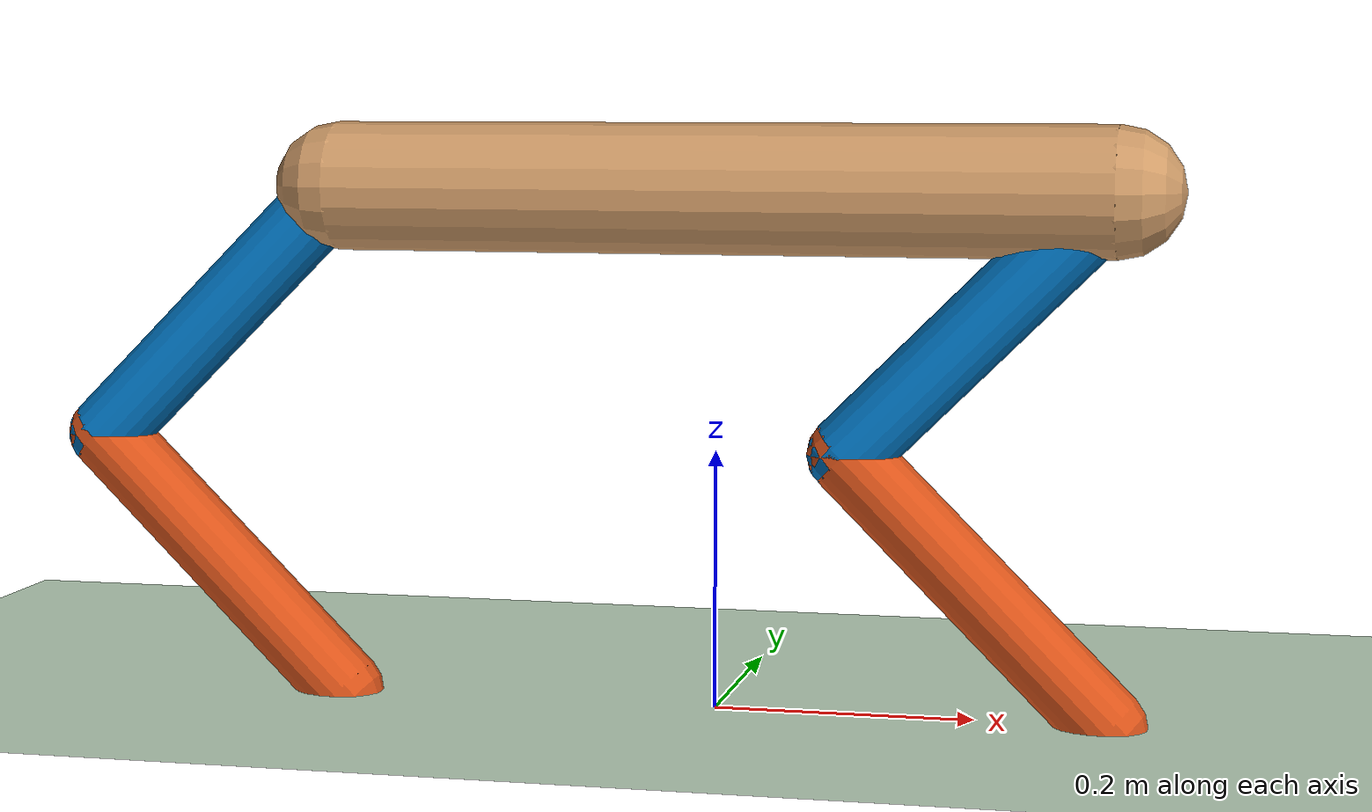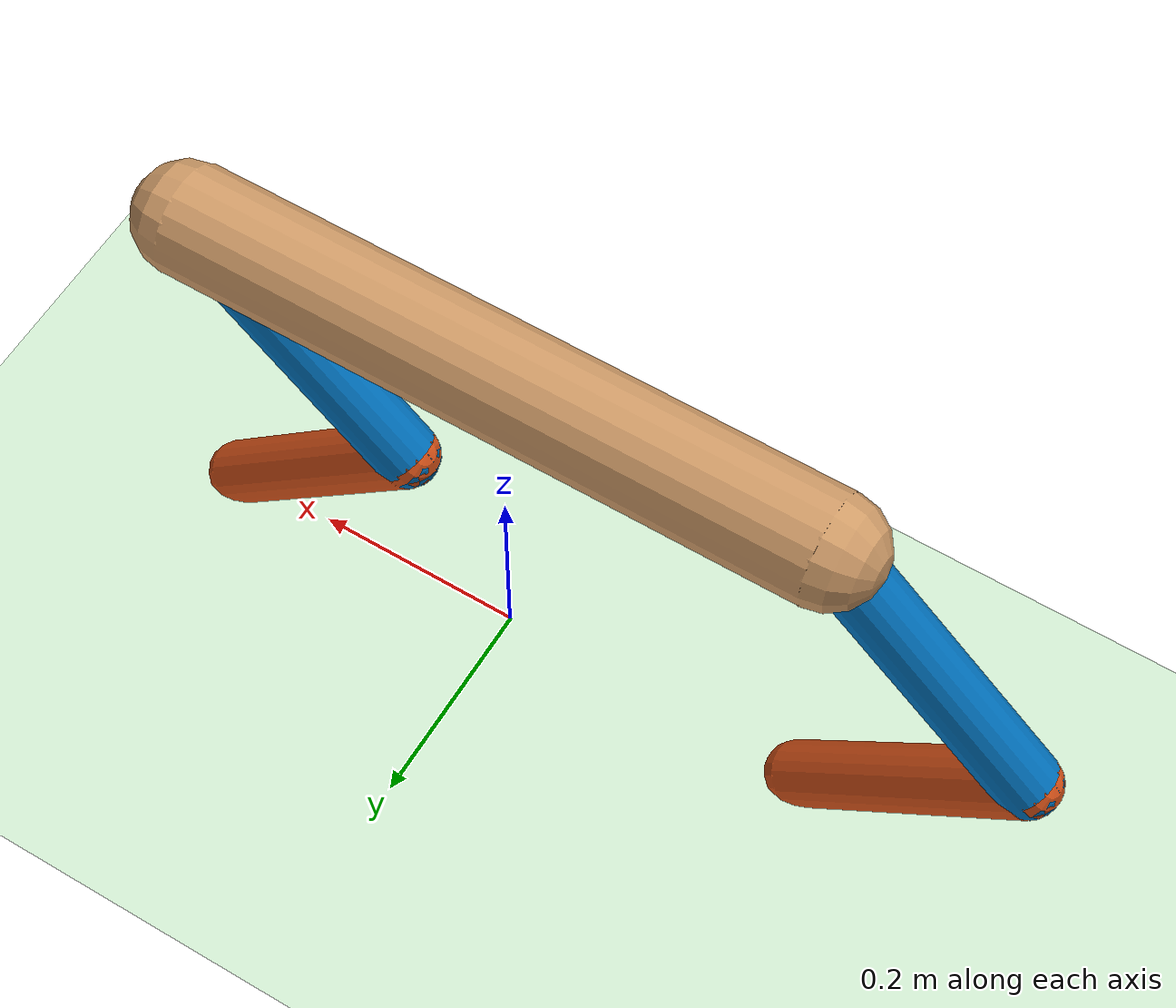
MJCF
<mujoco model="mit_mini_cheetah">
    <compiler angle="degree" coordinate="local" inertiafromgeom="true" settotalmass="14"/>
    <default>
        <joint armature=".1" damping="0.0" limited="true" solimplimit="0 .8 .03" solreflimit=".02 1" stiffness="0"/>
        <geom conaffinity="0" condim="3" contype="1" friction=".9 .1 .1" rgba="0.8 0.6 .4 1" solimp="0.0 0.8 0.01"
              solref="0.02 1"/>
        <motor ctrllimited="true" ctrlrange="-1 1"/>
    </default>
    <size nstack="300000" nuser_geom="1"/>
    <option gravity="0 0 -9.81" timestep="0.002"/>
    <asset>
        <texture builtin="gradient" height="100" rgb1="1 1 1" rgb2="0 0 0" type="skybox" width="100"/>
        <texture builtin="flat" height="1278" mark="cross" markrgb="1 1 1" name="texgeom" random="0.01"
                 rgb1="0.8 0.6 0.4" rgb2="0.8 0.6 0.4" type="cube" width="127"/>
        <texture builtin="checker" height="100" name="texplane" rgb1="0 0 0" rgb2="0.8 0.8 0.8" type="2d" width="100"/>
        <material name="MatPlane" reflectance="0.5" shininess="1" specular="1" texrepeat="60 60" texture="texplane"/>
        <material name="geom" texture="texgeom" texuniform="true"/>
    </asset>
    <worldbody>
        <light cutoff="100" diffuse="1 1 1" dir="-0 0 -1.3" directional="true" exponent="1" pos="0 0 1.3"
               specular=".1 .1 .1"/>
        <geom conaffinity="1" condim="3" material="MatPlane" name="floor" pos="0 0 0" rgba="0.8 0.9 0.8 1"
              size="60 60 60" type="plane"/>
        <body name="torso" pos="0 0 0.4">
            <camera name="track" mode="trackcom" pos="0 -3 0.3" xyaxes="1 0 0 0 0 1"/>
            <joint armature="0" axis="1 0 0" damping="0" limited="false" name="rootx" pos="0 0 0" stiffness="0"
                   type="slide"/>
            <joint armature="0" axis="0 0 1" damping="0" limited="false" name="rootz" pos="0 0 0" stiffness="0"
                   type="slide"/>
            <joint armature="0" axis="0 1 0" damping="0" limited="false" name="rooty" pos="0 0 0" stiffness="0"
                   type="hinge"/>
            <geom fromto="-0.3 0 0 0.3 0 0" name="torso" size="0.05" type="capsule"/>
            <body name="flthigh" pos="0.3 0 0">
                <joint axis="0 -1 0" damping="0.0" name="flthigh" pos="0 0 0" range="-35 125" stiffness="0"
                       type="hinge"/>
                <geom axisangle="0 -1 0 -45" name="flthigh" pos="-0.1 0 -0.1" rgba="0, 0.4470, 0.7410 1"
                      size="0.03 0.1414" type="capsule"/>
                <body name="flshin" pos="-0.2 0 -0.2">
                    <joint axis="0 -1 0" damping="0.0" name="flshin" pos="0 0 0" range="-80 80" stiffness="0"
                           type="hinge"/>
                    <geom axisangle="0 -1 0 45" name="flshin" pos="0.1 0 -0.1" rgba="0.8500, 0.3250, 0.0980 1"
                          size="0.03 0.1414" type="capsule"/>
                </body>
            </body>
            <body name="blthigh" pos="-0.3 0 0">
                <joint axis="0 -1 0" damping="0.0" name="blthigh" pos="0 0 0" range="-35 125" stiffness="0"
                       type="hinge"/>
                <geom axisangle="0 -1 0 -45" name="blthigh" pos="-0.1 0 -0.1" rgba="0, 0.4470, 0.7410 1"
                      size="0.03 0.1414" type="capsule"/>
                <body name="blshin" pos="-0.2 0 -0.2">
                    <joint axis="0 -1 0" damping="0.0" name="blshin" pos="0 0 0" range="-80 80" stiffness="0"
                           type="hinge"/>
                    <geom axisangle="0 -1 0 45" name="blshin" pos="0.1 0 -0.1" rgba="0.8500, 0.3250, 0.0980 1"
                          size="0.03 0.1414" type="capsule"/>
                </body>
            </body>
            <body name="frthigh" pos="0.3 0 0">
                <joint axis="0 -1 0" damping="0.0" name="frthigh" pos="0 0 0" range="-35 125" stiffness="0"
                       type="hinge"/>
                <geom axisangle="0 -1 0 -45" name="frthigh" pos="-0.1 0 -0.1" rgba="0.4940, 0.1840, 0.5560 1"
                      size="0.03 0.1414" type="capsule"/>
                <body name="frshin" pos="-0.2 0 -0.2">
                    <joint axis="0 -1 0" damping="0.0" name="frshin" pos="0 0 0" range="-80 80" stiffness="0"
                           type="hinge"/>
                    <geom axisangle="0 -1 0 45" name="frshin" pos="0.1 0 -0.1" rgba="0.4660, 0.6740, 0.1880 1"
                          size="0.03 0.1414" type="capsule"/>
                </body>
            </body>
            <body name="brthigh" pos="-0.3 0 0">
                <joint axis="0 -1 0" damping="0.0" name="brthigh" pos="0 0 0" range="-35 125" stiffness="0"
                       type="hinge"/>
                <geom axisangle="0 -1 0 -45" name="brthigh" pos="-0.1 0 -0.1" rgba="0.4940, 0.1840, 0.5560 1"
                      size="0.03 0.1414" type="capsule"/>
                <body name="brshin" pos="-0.2 0 -0.2">
                    <joint axis="0 -1 0" damping="0.0" name="brshin" pos="0 0 0" range="-80 80" stiffness="0"
                           type="hinge"/>
                    <geom axisangle="0 -1 0 45" name="brshin" pos="0.1 0 -0.1" rgba="0.4660, 0.6740, 0.1880 1"
                          size="0.03 0.1414" type="capsule"/>
                </body>
            </body>
        </body>
    </worldbody>
    <actuator>
        <motor gear="100" joint="flthigh" name="flthigh"/>
        <motor gear="100" joint="flshin" name="flshin"/>
        <motor gear="100" joint="blthigh" name="blthigh"/>
        <motor gear="100" joint="blshin" name="blshin"/>
        <motor gear="100" joint="frthigh" name="frthigh"/>
        <motor gear="100" joint="frshin" name="frshin"/>
        <motor gear="100" joint="brthigh" name="brthigh"/>
        <motor gear="100" joint="brshin" name="brshin"/>
    </actuator>
</mujoco>
